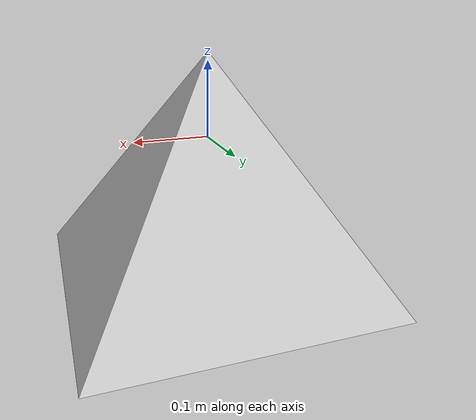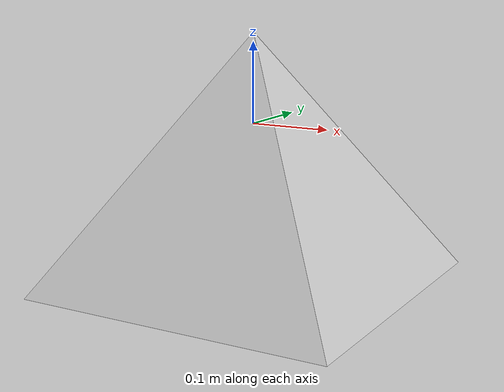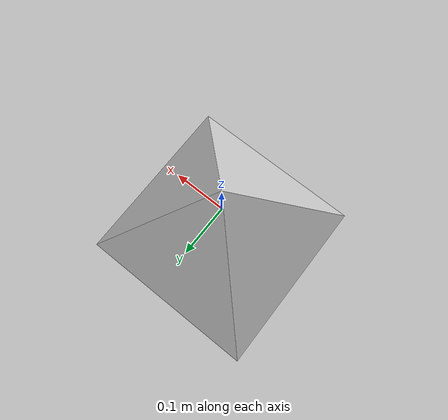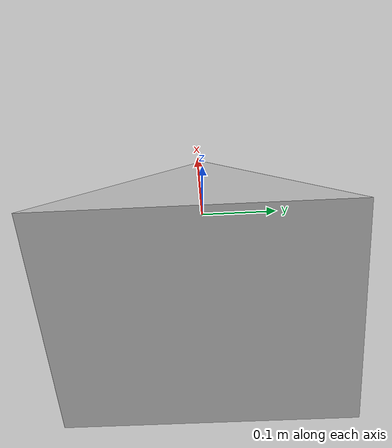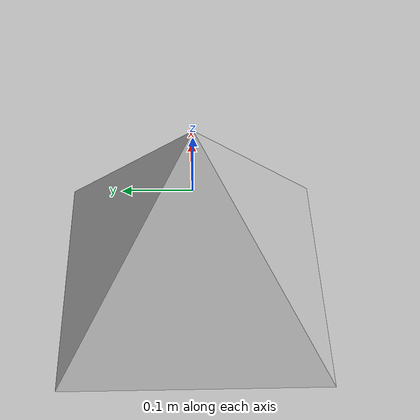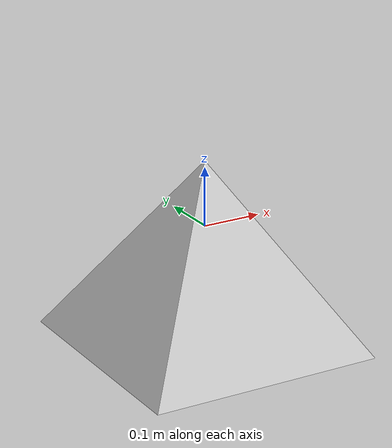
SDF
<?xml version="1.0" ?>
<sdf version="1.5">
  <model name="piramide">
    <link name="link">
      <collision name="collision">
        <geometry>
          <mesh>
            <scale>0.2 0.2 0.2</scale>
            <uri>model://piramide/meshes/piramide.stl</uri>
          </mesh>
        </geometry>
      </collision>
      <visual name="visual">
        <geometry>
          <mesh>
            <scale>0.2 0.2 0.2</scale>
            <uri>model://piramide/meshes/piramide.dae</uri>
          </mesh>
        </geometry>
      </visual>
    </link>
  </model>
</sdf>
